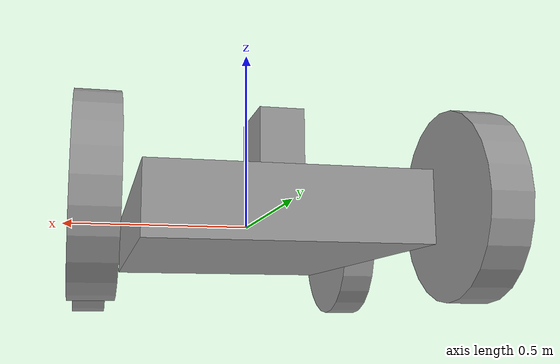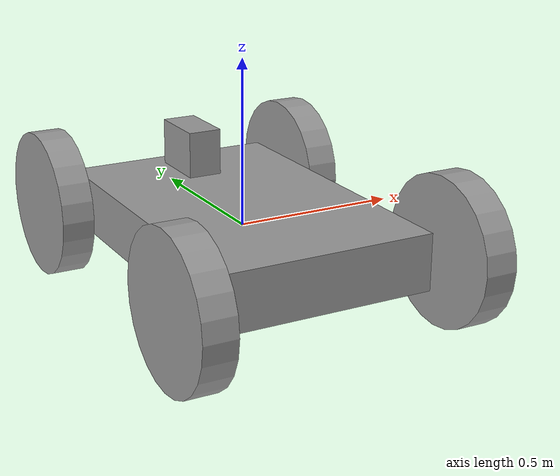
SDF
<?xml version='1.0'?>
<sdf version='1.6'>
  <model name='marlin'>
    <link name='link_1'>
      <inertial>
        <mass>5</mass>
        <inertia>
          <ixx>0.428684</ixx>
          <ixy>0</ixy>
          <ixz>0</ixz>
          <iyy>0.190336</iyy>
          <iyz>0</iyz>
          <izz>0.594986</izz>
        </inertia>
        <pose frame=''>0 0 0 0 -0 0</pose>
      </inertial>
      <pose frame=''>-0 0.00914 -0.007545 0 -0 0</pose>
      <gravity>1</gravity>
      <self_collide>0</self_collide>
      <kinematic>0</kinematic>
      <enable_wind>0</enable_wind>
      <visual name='visual'>
        <pose frame=''>0 0 0 0 -0 0</pose>
        <geometry>
          <box>
            <size>0.654191 1 0.169826</size>
          </box>
        </geometry>
        <material>
          <lighting>1</lighting>
          <script>
            <uri>file://media/materials/scripts/gazebo.material</uri>
            <name>Gazebo/Grey</name>
          </script>
          <shader type='vertex'>
            <normal_map>__default__</normal_map>
          </shader>
          <ambient>0.3 0.3 0.3 1</ambient>
          <diffuse>0.7 0.7 0.7 1</diffuse>
          <specular>0.01 0.01 0.01 1</specular>
          <emissive>0 0 0 1</emissive>
        </material>
        <transparency>0</transparency>
        <cast_shadows>1</cast_shadows>
      </visual>
      <collision name='collision'>
        <laser_retro>0</laser_retro>
        <max_contacts>10</max_contacts>
        <pose frame=''>0 0 0 0 -0 0</pose>
        <geometry>
          <box>
            <size>0.654191 1 0.169826</size>
          </box>
        </geometry>
        <surface>
          <friction>
            <ode>
              <mu>1</mu>
              <mu2>1</mu2>
              <fdir1>0 0 0</fdir1>
              <slip1>0</slip1>
              <slip2>0</slip2>
            </ode>
            <torsional>
              <coefficient>1</coefficient>
              <patch_radius>0</patch_radius>
              <surface_radius>0</surface_radius>
              <use_patch_radius>1</use_patch_radius>
              <ode>
                <slip>0</slip>
              </ode>
            </torsional>
          </friction>
          <bounce>
            <restitution_coefficient>0</restitution_coefficient>
            <threshold>1e+06</threshold>
          </bounce>
          <contact>
            <collide_without_contact>0</collide_without_contact>
            <collide_without_contact_bitmask>1</collide_without_contact_bitmask>
            <collide_bitmask>1</collide_bitmask>
            <ode>
              <soft_cfm>0</soft_cfm>
              <soft_erp>0.2</soft_erp>
              <kp>1e+13</kp>
              <kd>1</kd>
              <max_vel>0.01</max_vel>
              <min_depth>0</min_depth>
            </ode>
            <bullet>
              <split_impulse>1</split_impulse>
              <split_impulse_penetration_threshold>-0.01</split_impulse_penetration_threshold>
              <soft_cfm>0</soft_cfm>
              <soft_erp>0.2</soft_erp>
              <kp>1e+13</kp>
              <kd>1</kd>
            </bullet>
          </contact>
        </surface>
      </collision>
    </link>
    <link name='camera_link'>
      <inertial>
        <mass>0.00311427</mass>
        <inertia>
          <ixx>9.31086e-06</ixx>
          <ixy>0</ixy>
          <ixz>0</ixz>
          <iyy>1.57288e-05</iyy>
          <iyz>0</iyz>
          <izz>1.20857e-05</izz>
        </inertia>
        <pose frame=''>0 0 0 0 -0 1.57079632</pose>
      </inertial>
      <sensor name='camera1' type='camera'>
        <camera name="head">
          <horizontal_fov>1.3962634</horizontal_fov>
          <image>
            <width>1280</width>
            <height>720</height>
            <format>R8G8B8</format>
          </image>
          <clip>
            <near>0.02</near>
            <far>300</far>
          </clip>
        </camera>
        <always_on>1</always_on>
        <update_rate>15</update_rate>
        <visualize>1</visualize>
        <plugin name="camera_controller" filename="libgazebo_ros_camera.so">
        <alwaysOn>true</alwaysOn>
        <updateRate>0.0</updateRate>
        <cameraName>camera</cameraName>
        <imageTopicName>image_raw</imageTopicName>
        <cameraInfoTopicName>camera_info</cameraInfoTopicName>
        <frameName>camera_link</frameName>
        <hackBaseline>0.07</hackBaseline>
        <distortionK1>0.0</distortionK1>
        <distortionK2>0.0</distortionK2>
        <distortionK3>0.0</distortionK3>
        <distortionT1>0.0</distortionT1>
        <distortionT2>0.0</distortionT2>
      </plugin>
      </sensor>
      <pose frame=''>0.007573 0.353081 0.141239 0 1e-06 1.57079632</pose>
      <visual name='visual'>
        <pose frame=''>0 0 0 0 -0 0</pose>
        <geometry>
          <box>
            <size>0.188811 0.104497 0.157979</size>
          </box>
        </geometry>
        <material>
          <lighting>1</lighting>
          <script>
            <uri>file://media/materials/scripts/gazebo.material</uri>
            <name>Gazebo/Grey</name>
          </script>
          <emissive>0 0 0 1</emissive>
        </material>
        <transparency>0</transparency>
        <cast_shadows>1</cast_shadows>
      </visual>
      <collision name='collision'>
        <laser_retro>0</laser_retro>
        <max_contacts>10</max_contacts>
        <pose frame=''>0 0 0 0 -0 0</pose>
        <geometry>
          <box>
            <size>0.188811 0.104497 0.157979</size>
          </box>
        </geometry>
        <surface>
          <friction>
            <ode>
              <mu>1</mu>
              <mu2>1</mu2>
              <fdir1>0 0 0</fdir1>
              <slip1>0</slip1>
              <slip2>0</slip2>
            </ode>
            <torsional>
              <coefficient>1</coefficient>
              <patch_radius>0</patch_radius>
              <surface_radius>0</surface_radius>
              <use_patch_radius>1</use_patch_radius>
              <ode>
                <slip>0</slip>
              </ode>
            </torsional>
          </friction>
          <bounce>
            <restitution_coefficient>0</restitution_coefficient>
            <threshold>1e+06</threshold>
          </bounce>
          <contact>
            <collide_without_contact>0</collide_without_contact>
            <collide_without_contact_bitmask>1</collide_without_contact_bitmask>
            <collide_bitmask>1</collide_bitmask>
            <ode>
              <soft_cfm>0</soft_cfm>
              <soft_erp>0.2</soft_erp>
              <kp>1e+13</kp>
              <kd>1</kd>
              <max_vel>0.01</max_vel>
              <min_depth>0</min_depth>
            </ode>
            <bullet>
              <split_impulse>1</split_impulse>
              <split_impulse_penetration_threshold>-0.01</split_impulse_penetration_threshold>
              <soft_cfm>0</soft_cfm>
              <soft_erp>0.2</soft_erp>
              <kp>1e+13</kp>
              <kd>1</kd>
            </bullet>
          </contact>
        </surface>
      </collision>
    </link>
    <link name='link_2'>
      <inertial>
        <mass>1</mass>
        <inertia>
          <ixx>0.0131563</ixx>
          <ixy>0</ixy>
          <ixz>0</ixz>
          <iyy>0.0131563</iyy>
          <iyz>0</iyz>
          <izz>0.0247202</izz>
        </inertia>
        <pose frame=''>0 0 0 0 -0 0</pose>
      </inertial>
      <pose frame=''>0.422661 -0.451098 0.001886 -3.14159 -1.57079 -3e-06</pose>
      <gravity>1</gravity>
      <self_collide>0</self_collide>
      <kinematic>0</kinematic>
      <enable_wind>0</enable_wind>
      <visual name='visual'>
        <pose frame=''>0 0 0 0 -0 0</pose>
        <geometry>
          <cylinder>
            <radius>0.222352</radius>
            <length>0.0977479</length>
          </cylinder>
        </geometry>
        <material>
          <lighting>1</lighting>
          <script>
            <uri>file://media/materials/scripts/gazebo.material</uri>
            <name>Gazebo/Grey</name>
          </script>
          <shader type='vertex'>
            <normal_map>__default__</normal_map>
          </shader>
          <ambient>0.3 0.3 0.3 1</ambient>
          <diffuse>0.7 0.7 0.7 1</diffuse>
          <specular>0.01 0.01 0.01 1</specular>
          <emissive>0 0 0 1</emissive>
        </material>
        <transparency>0</transparency>
        <cast_shadows>1</cast_shadows>
      </visual>
      <collision name='collision'>
        <laser_retro>0</laser_retro>
        <max_contacts>10</max_contacts>
        <pose frame=''>0 0 0 0 -0 0</pose>
        <geometry>
          <cylinder>
            <radius>0.222352</radius>
            <length>0.097748</length>
          </cylinder>
        </geometry>
        <surface>
          <friction>
            <ode>
              <mu>1</mu>
              <mu2>1</mu2>
              <fdir1>0 0 0</fdir1>
              <slip1>0</slip1>
              <slip2>0</slip2>
            </ode>
            <torsional>
              <coefficient>1</coefficient>
              <patch_radius>0</patch_radius>
              <surface_radius>0</surface_radius>
              <use_patch_radius>1</use_patch_radius>
              <ode>
                <slip>0</slip>
              </ode>
            </torsional>
          </friction>
          <bounce>
            <restitution_coefficient>0</restitution_coefficient>
            <threshold>1e+06</threshold>
          </bounce>
          <contact>
            <collide_without_contact>0</collide_without_contact>
            <collide_without_contact_bitmask>1</collide_without_contact_bitmask>
            <collide_bitmask>1</collide_bitmask>
            <ode>
              <soft_cfm>0</soft_cfm>
              <soft_erp>0.2</soft_erp>
              <kp>1e+13</kp>
              <kd>1</kd>
              <max_vel>0.01</max_vel>
              <min_depth>0</min_depth>
            </ode>
            <bullet>
              <split_impulse>1</split_impulse>
              <split_impulse_penetration_threshold>-0.01</split_impulse_penetration_threshold>
              <soft_cfm>0</soft_cfm>
              <soft_erp>0.2</soft_erp>
              <kp>1e+13</kp>
              <kd>1</kd>
            </bullet>
          </contact>
        </surface>
      </collision>
    </link>
    <link name='link_2_clone'>
      <inertial>
        <mass>1</mass>
        <inertia>
          <ixx>0.0131563</ixx>
          <ixy>0</ixy>
          <ixz>0</ixz>
          <iyy>0.0131563</iyy>
          <iyz>0</iyz>
          <izz>0.0247202</izz>
        </inertia>
        <pose frame=''>0 0 0 0 -0 0</pose>
      </inertial>
      <pose frame=''>-0.422661 0.457533 0.001886 -3.14159 -1.57079 -3e-06</pose>
      <gravity>1</gravity>
      <self_collide>0</self_collide>
      <kinematic>0</kinematic>
      <enable_wind>0</enable_wind>
      <visual name='visual'>
        <pose frame=''>0 0 0 0 -0 0</pose>
        <geometry>
          <cylinder>
            <radius>0.222352</radius>
            <length>0.0977479</length>
          </cylinder>
        </geometry>
        <material>
          <lighting>1</lighting>
          <script>
            <uri>file://media/materials/scripts/gazebo.material</uri>
            <name>Gazebo/Grey</name>
          </script>
          <shader type='vertex'>
            <normal_map>__default__</normal_map>
          </shader>
          <ambient>0.3 0.3 0.3 1</ambient>
          <diffuse>0.7 0.7 0.7 1</diffuse>
          <specular>0.01 0.01 0.01 1</specular>
          <emissive>0 0 0 1</emissive>
        </material>
        <transparency>0</transparency>
        <cast_shadows>1</cast_shadows>
      </visual>
      <collision name='collision'>
        <laser_retro>0</laser_retro>
        <max_contacts>10</max_contacts>
        <pose frame=''>0 0 0 0 -0 0</pose>
        <geometry>
          <cylinder>
            <radius>0.222352</radius>
            <length>0.097748</length>
          </cylinder>
        </geometry>
        <surface>
          <friction>
            <ode>
              <mu>1</mu>
              <mu2>1</mu2>
              <fdir1>0 0 0</fdir1>
              <slip1>0</slip1>
              <slip2>0</slip2>
            </ode>
            <torsional>
              <coefficient>1</coefficient>
              <patch_radius>0</patch_radius>
              <surface_radius>0</surface_radius>
              <use_patch_radius>1</use_patch_radius>
              <ode>
                <slip>0</slip>
              </ode>
            </torsional>
          </friction>
          <bounce>
            <restitution_coefficient>0</restitution_coefficient>
            <threshold>1e+06</threshold>
          </bounce>
          <contact>
            <collide_without_contact>0</collide_without_contact>
            <collide_without_contact_bitmask>1</collide_without_contact_bitmask>
            <collide_bitmask>1</collide_bitmask>
            <ode>
              <soft_cfm>0</soft_cfm>
              <soft_erp>0.2</soft_erp>
              <kp>1e+13</kp>
              <kd>1</kd>
              <max_vel>0.01</max_vel>
              <min_depth>0</min_depth>
            </ode>
            <bullet>
              <split_impulse>1</split_impulse>
              <split_impulse_penetration_threshold>-0.01</split_impulse_penetration_threshold>
              <soft_cfm>0</soft_cfm>
              <soft_erp>0.2</soft_erp>
              <kp>1e+13</kp>
              <kd>1</kd>
            </bullet>
          </contact>
        </surface>
      </collision>
    </link>
    <link name='link_2_clone_0'>
      <inertial>
        <mass>1</mass>
        <inertia>
          <ixx>0.0131563</ixx>
          <ixy>0</ixy>
          <ixz>0</ixz>
          <iyy>0.0131563</iyy>
          <iyz>0</iyz>
          <izz>0.0247202</izz>
        </inertia>
        <pose frame=''>0 0 0 0 -0 0</pose>
      </inertial>
      <pose frame=''>-0.422661 -0.473107 0.001886 -3.14159 -1.57079 -3e-06</pose>
      <gravity>1</gravity>
      <self_collide>0</self_collide>
      <kinematic>0</kinematic>
      <enable_wind>0</enable_wind>
      <visual name='visual'>
        <pose frame=''>0 0 0 0 -0 0</pose>
        <geometry>
          <cylinder>
            <radius>0.222352</radius>
            <length>0.0977479</length>
          </cylinder>
        </geometry>
        <material>
          <lighting>1</lighting>
          <script>
            <uri>file://media/materials/scripts/gazebo.material</uri>
            <name>Gazebo/Grey</name>
          </script>
          <shader type='vertex'>
            <normal_map>__default__</normal_map>
          </shader>
          <ambient>0.3 0.3 0.3 1</ambient>
          <diffuse>0.7 0.7 0.7 1</diffuse>
          <specular>0.01 0.01 0.01 1</specular>
          <emissive>0 0 0 1</emissive>
        </material>
        <transparency>0</transparency>
        <cast_shadows>1</cast_shadows>
      </visual>
      <collision name='collision'>
        <laser_retro>0</laser_retro>
        <max_contacts>10</max_contacts>
        <pose frame=''>0 0 0 0 -0 0</pose>
        <geometry>
          <cylinder>
            <radius>0.222352</radius>
            <length>0.097748</length>
          </cylinder>
        </geometry>
        <surface>
          <friction>
            <ode>
              <mu>1</mu>
              <mu2>1</mu2>
              <fdir1>0 0 0</fdir1>
              <slip1>0</slip1>
              <slip2>0</slip2>
            </ode>
            <torsional>
              <coefficient>1</coefficient>
              <patch_radius>0</patch_radius>
              <surface_radius>0</surface_radius>
              <use_patch_radius>1</use_patch_radius>
              <ode>
                <slip>0</slip>
              </ode>
            </torsional>
          </friction>
          <bounce>
            <restitution_coefficient>0</restitution_coefficient>
            <threshold>1e+06</threshold>
          </bounce>
          <contact>
            <collide_without_contact>0</collide_without_contact>
            <collide_without_contact_bitmask>1</collide_without_contact_bitmask>
            <collide_bitmask>1</collide_bitmask>
            <ode>
              <soft_cfm>0</soft_cfm>
              <soft_erp>0.2</soft_erp>
              <kp>1e+13</kp>
              <kd>1</kd>
              <max_vel>0.01</max_vel>
              <min_depth>0</min_depth>
            </ode>
            <bullet>
              <split_impulse>1</split_impulse>
              <split_impulse_penetration_threshold>-0.01</split_impulse_penetration_threshold>
              <soft_cfm>0</soft_cfm>
              <soft_erp>0.2</soft_erp>
              <kp>1e+13</kp>
              <kd>1</kd>
            </bullet>
          </contact>
        </surface>
      </collision>
    </link>
    <link name='link_2_clone_clone'>
      <inertial>
        <mass>1</mass>
        <inertia>
          <ixx>0.0131563</ixx>
          <ixy>0</ixy>
          <ixz>0</ixz>
          <iyy>0.0131563</iyy>
          <iyz>0</iyz>
          <izz>0.0247202</izz>
        </inertia>
        <pose frame=''>0 0 0 0 -0 0</pose>
      </inertial>
      <pose frame=''>0.422661 0.457533 0.001886 -3.14159 -1.57079 -3e-06</pose>
      <gravity>1</gravity>
      <self_collide>0</self_collide>
      <kinematic>0</kinematic>
      <enable_wind>0</enable_wind>
      <visual name='visual'>
        <pose frame=''>0 0 0 0 -0 0</pose>
        <geometry>
          <cylinder>
            <radius>0.222352</radius>
            <length>0.0977479</length>
          </cylinder>
        </geometry>
        <material>
          <lighting>1</lighting>
          <script>
            <uri>file://media/materials/scripts/gazebo.material</uri>
            <name>Gazebo/Grey</name>
          </script>
          <shader type='vertex'>
            <normal_map>__default__</normal_map>
          </shader>
          <ambient>0.3 0.3 0.3 1</ambient>
          <diffuse>0.7 0.7 0.7 1</diffuse>
          <specular>0.01 0.01 0.01 1</specular>
          <emissive>0 0 0 1</emissive>
        </material>
        <transparency>0</transparency>
        <cast_shadows>1</cast_shadows>
      </visual>
      <collision name='collision'>
        <laser_retro>0</laser_retro>
        <max_contacts>10</max_contacts>
        <pose frame=''>0 0 0 0 -0 0</pose>
        <geometry>
          <cylinder>
            <radius>0.222352</radius>
            <length>0.097748</length>
          </cylinder>
        </geometry>
        <surface>
          <friction>
            <ode>
              <mu>1</mu>
              <mu2>1</mu2>
              <fdir1>0 0 0</fdir1>
              <slip1>0</slip1>
              <slip2>0</slip2>
            </ode>
            <torsional>
              <coefficient>1</coefficient>
              <patch_radius>0</patch_radius>
              <surface_radius>0</surface_radius>
              <use_patch_radius>1</use_patch_radius>
              <ode>
                <slip>0</slip>
              </ode>
            </torsional>
          </friction>
          <bounce>
            <restitution_coefficient>0</restitution_coefficient>
            <threshold>1e+06</threshold>
          </bounce>
          <contact>
            <collide_without_contact>0</collide_without_contact>
            <collide_without_contact_bitmask>1</collide_without_contact_bitmask>
            <collide_bitmask>1</collide_bitmask>
            <ode>
              <soft_cfm>0</soft_cfm>
              <soft_erp>0.2</soft_erp>
              <kp>1e+13</kp>
              <kd>1</kd>
              <max_vel>0.01</max_vel>
              <min_depth>0</min_depth>
            </ode>
            <bullet>
              <split_impulse>1</split_impulse>
              <split_impulse_penetration_threshold>-0.01</split_impulse_penetration_threshold>
              <soft_cfm>0</soft_cfm>
              <soft_erp>0.2</soft_erp>
              <kp>1e+13</kp>
              <kd>1</kd>
            </bullet>
          </contact>
        </surface>
      </collision>
    </link>
    <joint name='camera_link_JOINT_1' type='fixed'>
      <parent>camera_link</parent>
      <child>link_1</child>
      <pose frame=''>0 0 0 0 -0 0</pose>
      <physics>
        <ode>
          <limit>
            <cfm>0</cfm>
            <erp>0.2</erp>
          </limit>
          <suspension>
            <cfm>0</cfm>
            <erp>0.2</erp>
          </suspension>
        </ode>
      </physics>
    </joint>
    <joint name='link_1_JOINT_0' type='revolute'>
      <parent>link_1</parent>
      <child>link_2_clone_clone</child>
      <pose frame=''>0 0 0 0 -0 0</pose>
      <axis>
        <xyz>0 0 1</xyz>
        <use_parent_model_frame>0</use_parent_model_frame>
        <limit>
          <lower>-1.79769e+308</lower>
          <upper>1.79769e+308</upper>
          <effort>-1</effort>
          <velocity>-1</velocity>
        </limit>
        <dynamics>
          <spring_reference>0</spring_reference>
          <spring_stiffness>0</spring_stiffness>
          <damping>0</damping>
          <friction>0</friction>
        </dynamics>
      </axis>
      <physics>
        <ode>
          <limit>
            <cfm>0</cfm>
            <erp>0.2</erp>
          </limit>
          <suspension>
            <cfm>0</cfm>
            <erp>0.2</erp>
          </suspension>
        </ode>
      </physics>
    </joint>
    <joint name='link_1_JOINT_1' type='revolute'>
      <parent>link_1</parent>
      <child>link_2</child>
      <pose frame=''>0 0 0 0 -0 0</pose>
      <axis>
        <xyz>0 0 1</xyz>
        <use_parent_model_frame>0</use_parent_model_frame>
        <limit>
          <lower>-1.79769e+308</lower>
          <upper>1.79769e+308</upper>
          <effort>-1</effort>
          <velocity>-1</velocity>
        </limit>
        <dynamics>
          <spring_reference>0</spring_reference>
          <spring_stiffness>0</spring_stiffness>
          <damping>0</damping>
          <friction>0</friction>
        </dynamics>
      </axis>
      <physics>
        <ode>
          <limit>
            <cfm>0</cfm>
            <erp>0.2</erp>
          </limit>
          <suspension>
            <cfm>0</cfm>
            <erp>0.2</erp>
          </suspension>
        </ode>
      </physics>
    </joint>
    <joint name='link_1_JOINT_2' type='revolute'>
      <parent>link_1</parent>
      <child>link_2_clone</child>
      <pose frame=''>0 0 0 0 -0 0</pose>
      <axis>
        <xyz>0 0 1</xyz>
        <use_parent_model_frame>0</use_parent_model_frame>
        <limit>
          <lower>-1.79769e+308</lower>
          <upper>1.79769e+308</upper>
          <effort>-1</effort>
          <velocity>-1</velocity>
        </limit>
        <dynamics>
          <spring_reference>0</spring_reference>
          <spring_stiffness>0</spring_stiffness>
          <damping>0</damping>
          <friction>0</friction>
        </dynamics>
      </axis>
      <physics>
        <ode>
          <limit>
            <cfm>0</cfm>
            <erp>0.2</erp>
          </limit>
          <suspension>
            <cfm>0</cfm>
            <erp>0.2</erp>
          </suspension>
        </ode>
      </physics>
    </joint>
    <joint name='link_1_JOINT_3' type='revolute'>
      <parent>link_1</parent>
      <child>link_2_clone_0</child>
      <pose frame=''>0 0 0 0 -0 0</pose>
      <axis>
        <xyz>0 0 1</xyz>
        <use_parent_model_frame>0</use_parent_model_frame>
        <limit>
          <lower>-1.79769e+308</lower>
          <upper>1.79769e+308</upper>
          <effort>-1</effort>
          <velocity>-1</velocity>
        </limit>
        <dynamics>
          <spring_reference>0</spring_reference>
          <spring_stiffness>0</spring_stiffness>
          <damping>0</damping>
          <friction>0</friction>
        </dynamics>
      </axis>
      <physics>
        <ode>
          <limit>
            <cfm>0</cfm>
            <erp>0.2</erp>
          </limit>
          <suspension>
            <cfm>0</cfm>
            <erp>0.2</erp>
          </suspension>
        </ode>
      </physics>
    </joint>
    <static>0</static>
    <allow_auto_disable>1</allow_auto_disable>
    <plugin name='object_controller' filename='libgazebo_ros_planar_move.so'>
      <commandTopic>cmd_vel</commandTopic>
      <odometryTopic>odom</odometryTopic>
      <odometryFrame>odom</odometryFrame>
      <odometryRate>20.0</odometryRate>
      <robotBaseFrame>base_footprint</robotBaseFrame>
    </plugin>
  </model>
</sdf>
